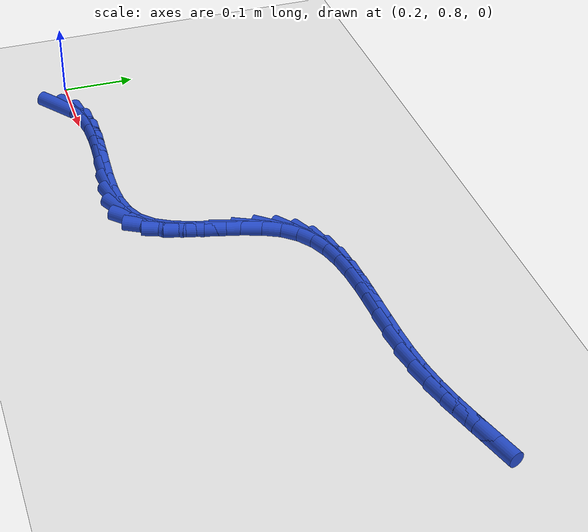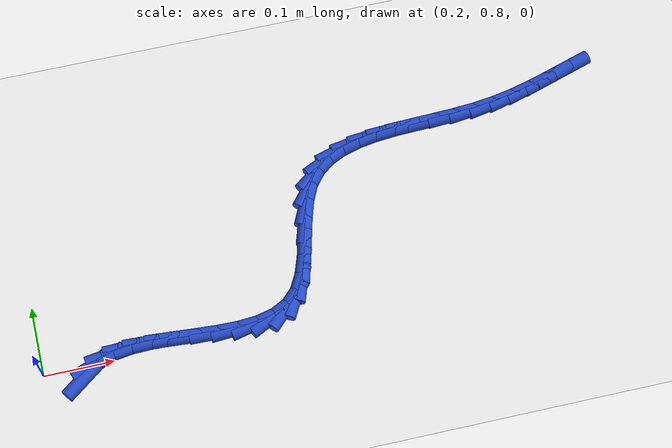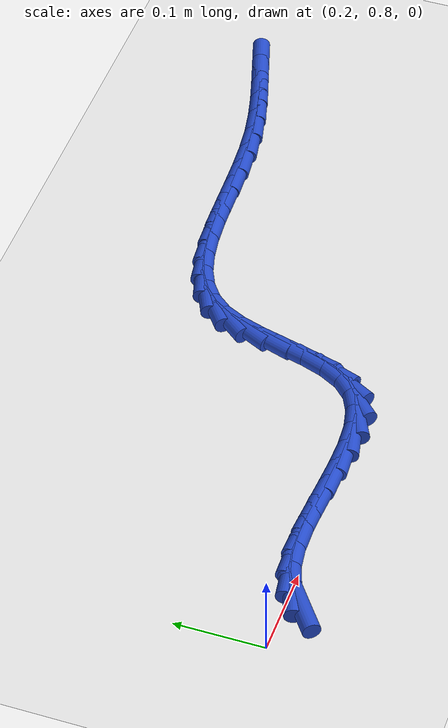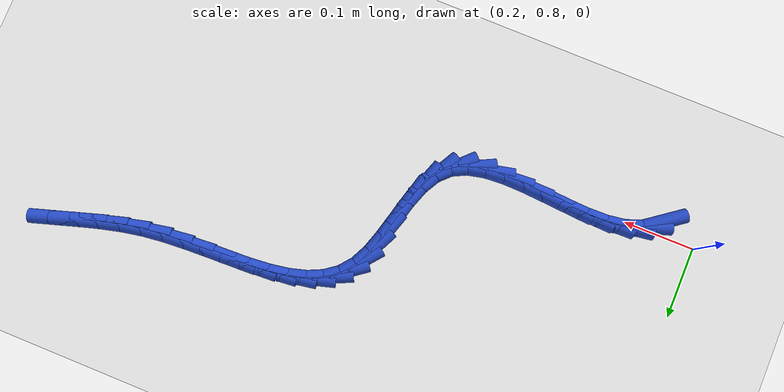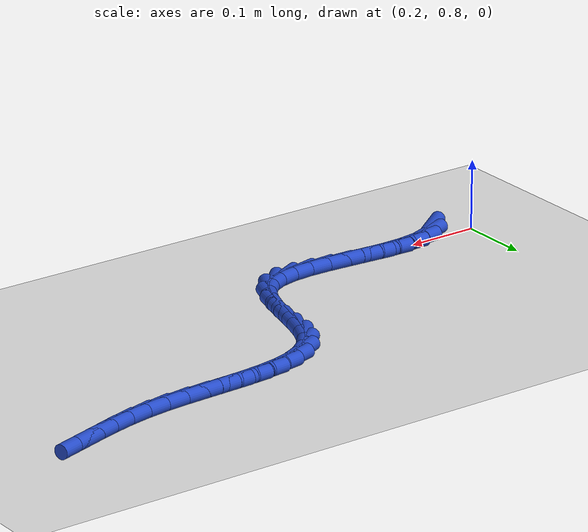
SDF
<sdf version="1.6">
 <world name="default">
  <model name="ground_plane">
   <static>1</static>
   <link name="link">
    <collision name="collision">
     <geometry><plane><normal>0 0 1</normal><size>100 100</size></plane></geometry>
     <surface><friction><ode><mu>100</mu><mu2>50</mu2></ode></friction></surface>
    </collision>
    <visual name="visual">
     <cast_shadows>0</cast_shadows>
     <geometry><plane><normal>0 0 1</normal><size>100 100</size></plane></geometry>
     <material>
      <script><uri>file://media/materials/scripts/gazebo.material</uri><name>Gazebo/WhiteGlow</name></script>
     </material>
    </visual>
   </link>
  </model>
  <model name="line">
   <link name="link_31">
    <pose>0.25936154793668753 0.7854713690197663 0.01 0 1.57 0.6419037195079508</pose>
    <collision name="collision">
     <geometry><cylinder><radius>0.01</radius><length>0.08</length></cylinder></geometry>
    </collision>
    <visual name="visual">
     <material>
      <script><name>Gazebo/Blue</name><uri>file://media/materials/scripts/gazebo.material</uri></script>
     </material>
     <geometry><cylinder><radius>0.01</radius><length>0.08</length></cylinder></geometry>
    </visual>
   </link>
   <link name="link_32">
    <pose>0.2776513134428089 0.7991430979301705 0.01 0 1.57 0.35094569051930663</pose>
    <collision name="collision">
     <geometry><cylinder><radius>0.01</radius><length>0.08</length></cylinder></geometry>
    </collision>
    <visual name="visual">
     <material>
      <script><name>Gazebo/Blue</name><uri>file://media/materials/scripts/gazebo.material</uri></script>
     </material>
     <geometry><cylinder><radius>0.01</radius><length>0.08</length></cylinder></geometry>
    </visual>
   </link>
   <link name="link_33">
    <pose>0.30022253444139285 0.8074064346914842 0.01 0 1.57 0.14914194250032858</pose>
    <collision name="collision">
     <geometry><cylinder><radius>0.01</radius><length>0.08</length></cylinder></geometry>
    </collision>
    <visual name="visual">
     <material>
      <script><name>Gazebo/Blue</name><uri>file://media/materials/scripts/gazebo.material</uri></script>
     </material>
     <geometry><cylinder><radius>0.01</radius><length>0.08</length></cylinder></geometry>
    </visual>
   </link>
   <link name="link_34">
    <pose>0.32624637487104396 0.8113167164365551 0.01 0 1.57 0.024775238561189537</pose>
    <collision name="collision">
     <geometry><cylinder><radius>0.01</radius><length>0.08</length></cylinder></geometry>
    </collision>
    <visual name="visual">
     <material>
      <script><name>Gazebo/Blue</name><uri>file://media/materials/scripts/gazebo.material</uri></script>
     </material>
     <geometry><cylinder><radius>0.01</radius><length>0.08</length></cylinder></geometry>
    </visual>
   </link>
   <link name="link_35">
    <pose>0.35481639819885447 0.8120246904405466 0.01 0 1.57 -0.04444594028672494</pose>
    <collision name="collision">
     <geometry><cylinder><radius>0.01</radius><length>0.08</length></cylinder></geometry>
    </collision>
    <visual name="visual">
     <material>
      <script><name>Gazebo/Blue</name><uri>file://media/materials/scripts/gazebo.material</uri></script>
     </material>
     <geometry><cylinder><radius>0.01</radius><length>0.08</length></cylinder></geometry>
    </visual>
   </link>
   <link name="link_36">
    <pose>0.3850261678919171 0.8106811039786226 0.01 0 1.57 -0.07240636971673417</pose>
    <collision name="collision">
     <geometry><cylinder><radius>0.01</radius><length>0.08</length></cylinder></geometry>
    </collision>
    <visual name="visual">
     <material>
      <script><name>Gazebo/Blue</name><uri>file://media/materials/scripts/gazebo.material</uri></script>
     </material>
     <geometry><cylinder><radius>0.01</radius><length>0.08</length></cylinder></geometry>
    </visual>
   </link>
   <link name="link_37">
    <pose>0.4159692474173244 0.8084367043259473 0.01 0 1.57 -0.06472806060632869</pose>
    <collision name="collision">
     <geometry><cylinder><radius>0.01</radius><length>0.08</length></cylinder></geometry>
    </collision>
    <visual name="visual">
     <material>
      <script><name>Gazebo/Blue</name><uri>file://media/materials/scripts/gazebo.material</uri></script>
     </material>
     <geometry><cylinder><radius>0.01</radius><length>0.08</length></cylinder></geometry>
    </visual>
   </link>
   <link name="link_38">
    <pose>0.4467392002421685 0.8064422387576843 0.01 0 1.57 -0.019996539988555044</pose>
    <collision name="collision">
     <geometry><cylinder><radius>0.01</radius><length>0.08</length></cylinder></geometry>
    </collision>
    <visual name="visual">
     <material>
      <script><name>Gazebo/Blue</name><uri>file://media/materials/scripts/gazebo.material</uri></script>
     </material>
     <geometry><cylinder><radius>0.01</radius><length>0.08</length></cylinder></geometry>
    </visual>
   </link>
   <link name="link_39">
    <pose>0.4764295898335419 0.8058484545489979 0.01 0 1.57 0.07054462940587654</pose>
    <collision name="collision">
     <geometry><cylinder><radius>0.01</radius><length>0.08</length></cylinder></geometry>
    </collision>
    <visual name="visual">
     <material>
      <script><name>Gazebo/Blue</name><uri>file://media/materials/scripts/gazebo.material</uri></script>
     </material>
     <geometry><cylinder><radius>0.01</radius><length>0.08</length></cylinder></geometry>
    </visual>
   </link>
   <link name="link_40">
    <pose>0.504133979658537 0.8078060989750518 0.01 0 1.57 0.2242712890571143</pose>
    <collision name="collision">
     <geometry><cylinder><radius>0.01</radius><length>0.08</length></cylinder></geometry>
    </collision>
    <visual name="visual">
     <material>
      <script><name>Gazebo/Blue</name><uri>file://media/materials/scripts/gazebo.material</uri></script>
     </material>
     <geometry><cylinder><radius>0.01</radius><length>0.08</length></cylinder></geometry>
    </visual>
   </link>
   <link name="link_41">
    <pose>0.5289459331842464 0.8134659193110099 0.01 0 1.57 0.46388374540919725</pose>
    <collision name="collision">
     <geometry><cylinder><radius>0.01</radius><length>0.08</length></cylinder></geometry>
    </collision>
    <visual name="visual">
     <material>
      <script><name>Gazebo/Blue</name><uri>file://media/materials/scripts/gazebo.material</uri></script>
     </material>
     <geometry><cylinder><radius>0.01</radius><length>0.08</length></cylinder></geometry>
    </visual>
   </link>
   <link name="link_42">
    <pose>0.5499590138777626 0.8239786628320361 0.01 0 1.57 0.7879435264150362</pose>
    <collision name="collision">
     <geometry><cylinder><radius>0.01</radius><length>0.08</length></cylinder></geometry>
    </collision>
    <visual name="visual">
     <material>
      <script><name>Gazebo/Blue</name><uri>file://media/materials/scripts/gazebo.material</uri></script>
     </material>
     <geometry><cylinder><radius>0.01</radius><length>0.08</length></cylinder></geometry>
    </visual>
   </link>
   <link name="link_43">
    <pose>0.5663218166258303 0.8404249768729714 0.01 0 1.57 1.0715326450406237</pose>
    <collision name="collision">
     <geometry><cylinder><radius>0.01</radius><length>0.08</length></cylinder></geometry>
    </collision>
    <visual name="visual">
     <material>
      <script><name>Gazebo/Blue</name><uri>file://media/materials/scripts/gazebo.material</uri></script>
     </material>
     <geometry><cylinder><radius>0.01</radius><length>0.08</length></cylinder></geometry>
    </visual>
   </link>
   <link name="link_44">
    <pose>0.5783235738967009 0.8624325455905482 0.01 0 1.57 1.2353045468312742</pose>
    <collision name="collision">
     <geometry><cylinder><radius>0.01</radius><length>0.08</length></cylinder></geometry>
    </collision>
    <visual name="visual">
     <material>
      <script><name>Gazebo/Blue</name><uri>file://media/materials/scripts/gazebo.material</uri></script>
     </material>
     <geometry><cylinder><radius>0.01</radius><length>0.08</length></cylinder></geometry>
    </visual>
   </link>
   <link name="link_45">
    <pose>0.5873287096634411 0.8882594562675766 0.01 0 1.57 1.3105978796279953</pose>
    <collision name="collision">
     <geometry><cylinder><radius>0.01</radius><length>0.08</length></cylinder></geometry>
    </collision>
    <visual name="visual">
     <material>
      <script><name>Gazebo/Blue</name><uri>file://media/materials/scripts/gazebo.material</uri></script>
     </material>
     <geometry><cylinder><radius>0.01</radius><length>0.08</length></cylinder></geometry>
    </visual>
   </link>
   <link name="link_46">
    <pose>0.5947435757755332 0.916110387758495 0.01 0 1.57 1.3187565866261128</pose>
    <collision name="collision">
     <geometry><cylinder><radius>0.01</radius><length>0.08</length></cylinder></geometry>
    </collision>
    <visual name="visual">
     <material>
      <script><name>Gazebo/Blue</name><uri>file://media/materials/scripts/gazebo.material</uri></script>
     </material>
     <geometry><cylinder><radius>0.01</radius><length>0.08</length></cylinder></geometry>
    </visual>
   </link>
   <link name="link_47">
    <pose>0.6019745240824607 0.944190018917742 0.01 0 1.57 1.2621468643064853</pose>
    <collision name="collision">
     <geometry><cylinder><radius>0.01</radius><length>0.08</length></cylinder></geometry>
    </collision>
    <visual name="visual">
     <material>
      <script><name>Gazebo/Blue</name><uri>file://media/materials/scripts/gazebo.material</uri></script>
     </material>
     <geometry><cylinder><radius>0.01</radius><length>0.08</length></cylinder></geometry>
    </visual>
   </link>
   <link name="link_48">
    <pose>0.6104279064337065 0.9707030285997563 0.01 0 1.57 1.1243421539087712</pose>
    <collision name="collision">
     <geometry><cylinder><radius>0.01</radius><length>0.08</length></cylinder></geometry>
    </collision>
    <visual name="visual">
     <material>
      <script><name>Gazebo/Blue</name><uri>file://media/materials/scripts/gazebo.material</uri></script>
     </material>
     <geometry><cylinder><radius>0.01</radius><length>0.08</length></cylinder></geometry>
    </visual>
   </link>
   <link name="link_49">
    <pose>0.6215100746787533 0.9938540956589759 0.01 0 1.57 0.892775921830412</pose>
    <collision name="collision">
     <geometry><cylinder><radius>0.01</radius><length>0.08</length></cylinder></geometry>
    </collision>
    <visual name="visual">
     <material>
      <script><name>Gazebo/Blue</name><uri>file://media/materials/scripts/gazebo.material</uri></script>
     </material>
     <geometry><cylinder><radius>0.01</radius><length>0.08</length></cylinder></geometry>
    </visual>
   </link>
   <link name="link_50">
    <pose>0.6363256004482516 1.0122495066304722 0.01 0 1.57 0.6462603727124178</pose>
    <collision name="collision">
     <geometry><cylinder><radius>0.01</radius><length>0.08</length></cylinder></geometry>
    </collision>
    <visual name="visual">
     <material>
      <script><name>Gazebo/Blue</name><uri>file://media/materials/scripts/gazebo.material</uri></script>
     </material>
     <geometry><cylinder><radius>0.01</radius><length>0.08</length></cylinder></geometry>
    </visual>
   </link>
   <link name="link_51">
    <pose>0.6547422133053874 1.0261415315930502 0.01 0 1.57 0.43652000357089554</pose>
    <collision name="collision">
     <geometry><cylinder><radius>0.01</radius><length>0.08</length></cylinder></geometry>
    </collision>
    <visual name="visual">
     <material>
      <script><name>Gazebo/Blue</name><uri>file://media/materials/scripts/gazebo.material</uri></script>
     </material>
     <geometry><cylinder><radius>0.01</radius><length>0.08</length></cylinder></geometry>
    </visual>
   </link>
   <link name="link_52">
    <pose>0.6763108199644118 1.0362040669667771 0.01 0 1.57 0.277241402589457</pose>
    <collision name="collision">
     <geometry><cylinder><radius>0.01</radius><length>0.08</length></cylinder></geometry>
    </collision>
    <visual name="visual">
     <material>
      <script><name>Gazebo/Blue</name><uri>file://media/materials/scripts/gazebo.material</uri></script>
     </material>
     <geometry><cylinder><radius>0.01</radius><length>0.08</length></cylinder></geometry>
    </visual>
   </link>
   <link name="link_53">
    <pose>0.7005823269747773 1.0431110093910356 0.01 0 1.57 0.16530861892790447</pose>
    <collision name="collision">
     <geometry><cylinder><radius>0.01</radius><length>0.08</length></cylinder></geometry>
    </collision>
    <visual name="visual">
     <material>
      <script><name>Gazebo/Blue</name><uri>file://media/materials/scripts/gazebo.material</uri></script>
     </material>
     <geometry><cylinder><radius>0.01</radius><length>0.08</length></cylinder></geometry>
    </visual>
   </link>
   <link name="link_54">
    <pose>0.727107640885937 1.0475362555052066 0.01 0 1.57 0.09212969307171853</pose>
    <collision name="collision">
     <geometry><cylinder><radius>0.01</radius><length>0.08</length></cylinder></geometry>
    </collision>
    <visual name="visual">
     <material>
      <script><name>Gazebo/Blue</name><uri>file://media/materials/scripts/gazebo.material</uri></script>
     </material>
     <geometry><cylinder><radius>0.01</radius><length>0.08</length></cylinder></geometry>
    </visual>
   </link>
   <link name="link_55">
    <pose>0.7554376682473433 1.050153701948671 0.01 0 1.57 0.04993356506762568</pose>
    <collision name="collision">
     <geometry><cylinder><radius>0.01</radius><length>0.08</length></cylinder></geometry>
    </collision>
    <visual name="visual">
     <material>
      <script><name>Gazebo/Blue</name><uri>file://media/materials/scripts/gazebo.material</uri></script>
     </material>
     <geometry><cylinder><radius>0.01</radius><length>0.08</length></cylinder></geometry>
    </visual>
   </link>
   <link name="link_56">
    <pose>0.7851233156084486 1.0516372453608107 0.01 0 1.57 0.033445003376697306</pose>
    <collision name="collision">
     <geometry><cylinder><radius>0.01</radius><length>0.08</length></cylinder></geometry>
    </collision>
    <visual name="visual">
     <material>
      <script><name>Gazebo/Blue</name><uri>file://media/materials/scripts/gazebo.material</uri></script>
     </material>
     <geometry><cylinder><radius>0.01</radius><length>0.08</length></cylinder></geometry>
    </visual>
   </link>
   <link name="link_57">
    <pose>0.8157154895187055 1.0526607823810064 0.01 0 1.57 0.039832155162960334</pose>
    <collision name="collision">
     <geometry><cylinder><radius>0.01</radius><length>0.08</length></cylinder></geometry>
    </collision>
    <visual name="visual">
     <material>
      <script><name>Gazebo/Blue</name><uri>file://media/materials/scripts/gazebo.material</uri></script>
     </material>
     <geometry><cylinder><radius>0.01</radius><length>0.08</length></cylinder></geometry>
    </visual>
   </link>
   <link name="link_58">
    <pose>0.8467650965275674 1.05389820964864 0.01 0 1.57 0.06832088730275097</pose>
    <collision name="collision">
     <geometry><cylinder><radius>0.01</radius><length>0.08</length></cylinder></geometry>
    </collision>
    <visual name="visual">
     <material>
      <script><name>Gazebo/Blue</name><uri>file://media/materials/scripts/gazebo.material</uri></script>
     </material>
     <geometry><cylinder><radius>0.01</radius><length>0.08</length></cylinder></geometry>
    </visual>
   </link>
   <link name="link_59">
    <pose>0.8778230431844865 1.0560234238030923 0.01 0 1.57 0.11984214740603137</pose>
    <collision name="collision">
     <geometry><cylinder><radius>0.01</radius><length>0.08</length></cylinder></geometry>
    </collision>
    <visual name="visual">
     <material>
      <script><name>Gazebo/Blue</name><uri>file://media/materials/scripts/gazebo.material</uri></script>
     </material>
     <geometry><cylinder><radius>0.01</radius><length>0.08</length></cylinder></geometry>
    </visual>
   </link>
   <link name="link_60">
    <pose>0.9084402360524533 1.0597103214474983 0.01 0 1.57 0.18898064070990592</pose>
    <collision name="collision">
     <geometry><cylinder><radius>0.01</radius><length>0.08</length></cylinder></geometry>
    </collision>
    <visual name="visual">
     <material>
      <script><name>Gazebo/Blue</name><uri>file://media/materials/scripts/gazebo.material</uri></script>
     </material>
     <geometry><cylinder><radius>0.01</radius><length>0.08</length></cylinder></geometry>
    </visual>
   </link>
   <link name="link_61">
    <pose>0.938250105020642 1.0654118458831983 0.01 0 1.57 0.2469142991239599</pose>
    <collision name="collision">
     <geometry><cylinder><radius>0.01</radius><length>0.08</length></cylinder></geometry>
    </collision>
    <visual name="visual">
     <material>
      <script><name>Gazebo/Blue</name><uri>file://media/materials/scripts/gazebo.material</uri></script>
     </material>
     <geometry><cylinder><radius>0.01</radius><length>0.08</length></cylinder></geometry>
    </visual>
   </link>
   <link name="link_62">
    <pose>0.9672107673984187 1.0727116012699862 0.01 0 1.57 0.28567785501170184</pose>
    <collision name="collision">
     <geometry><cylinder><radius>0.01</radius><length>0.08</length></cylinder></geometry>
    </collision>
    <visual name="visual">
     <material>
      <script><name>Gazebo/Blue</name><uri>file://media/materials/scripts/gazebo.material</uri></script>
     </material>
     <geometry><cylinder><radius>0.01</radius><length>0.08</length></cylinder></geometry>
    </visual>
   </link>
   <link name="link_63">
    <pose>0.9953601829395751 1.080979416432428 0.01 0 1.57 0.30456997993642676</pose>
    <collision name="collision">
     <geometry><cylinder><radius>0.01</radius><length>0.08</length></cylinder></geometry>
    </collision>
    <visual name="visual">
     <material>
      <script><name>Gazebo/Blue</name><uri>file://media/materials/scripts/gazebo.material</uri></script>
     </material>
     <geometry><cylinder><radius>0.01</radius><length>0.08</length></cylinder></geometry>
    </visual>
   </link>
   <link name="link_64">
    <pose>1.0227363113979027 1.089585120195091 0.01 0 1.57 0.3024802968139713</pose>
    <collision name="collision">
     <geometry><cylinder><radius>0.01</radius><length>0.08</length></cylinder></geometry>
    </collision>
    <visual name="visual">
     <material>
      <script><name>Gazebo/Blue</name><uri>file://media/materials/scripts/gazebo.material</uri></script>
     </material>
     <geometry><cylinder><radius>0.01</radius><length>0.08</length></cylinder></geometry>
    </visual>
   </link>
  </model>
 </world>
</sdf>
